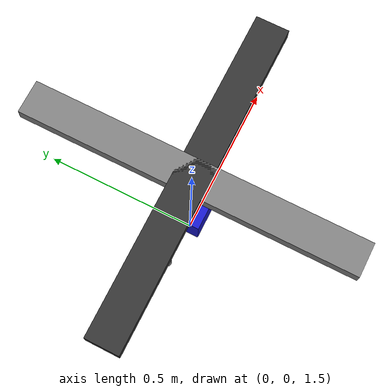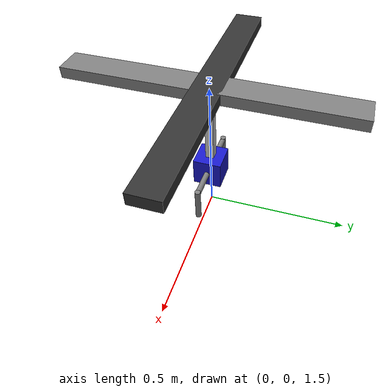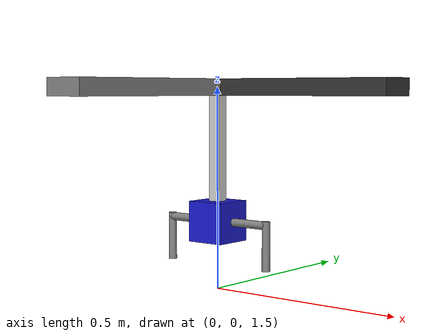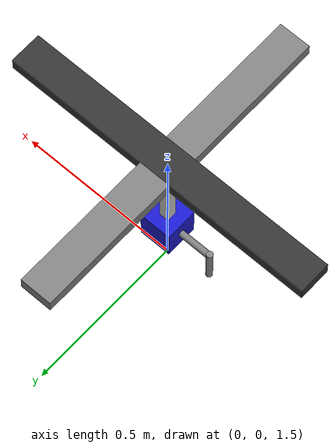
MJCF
<?xml version="1.0" encoding="utf-8"?>
<mujoco model="crane_game">
    <compiler angle="radian" autolimits="true"/>

    <default>
        <joint armature="1" damping="1" limited="true"/>
        <motor ctrllimited="true" ctrlrange="-1 1"/>
        <default class="track">
            <joint type="slide" damping="100" stiffness="0"/>
            <geom type="box" rgba="0.7 0.7 0.7 1" contype="1" conaffinity="1"/>
        </default>
        <default class="telescope">
            <joint type="slide" damping="100" stiffness="100"/>
            <geom type="box" rgba="0.7 0.7 0.7 1" contype="1" conaffinity="1"/>
        </default>
        <default class="claw">
            <joint type="hinge" damping="10" stiffness="0"/>
            <geom type="box" rgba="0.9 0.2 0.2 1" contype="1" conaffinity="1"/>
        </default>
    </default>

    <contact>
        <exclude body1="x_rail" body2="top_frame"/>
        <exclude body1="y_rail" body2="top_frame"/>
        <exclude body1="z_mechanism" body2="top_frame"/>
        <exclude body1="telescopic_segment" body2="top_frame"/>

        <exclude body1="x_rail" body2="y_rail"/>
        <exclude body1="y_rail" body2="z_mechanism"/>
        <exclude body1="x_rail" body2="z_mechanism"/>

        <exclude body1="y_rail" body2="telescopic_segment"/>
        <exclude body1="x_rail" body2="telescopic_segment"/>
        <exclude body1="z_mechanism" body2="telescopic_segment"/>

        <!-- Claw exclusions -->
        <exclude body1="claw_base" body2="telescopic_segment"/>
        <exclude body1="claw_left" body2="claw_right"/>
        <exclude body1="claw_base" body2="claw_left"/>
        <exclude body1="claw_base" body2="claw_right"/>
    </contact>

    <worldbody>
        <!-- Top frame -->
        <body name="top_frame" pos="0 0 2">
            <geom type="box" size="0.5 0.05 0.02" rgba="0.2 0.2 0.2 1" contype="1" conaffinity="1"/>

            <!-- X-axis rail -->
            <body name="x_rail" pos="0 0 0">
                <joint name="x_slider" class="track" axis="1 0 0" range="-0.4 0.4"/>
                <geom type="box" size="0.05 0.5 0.02"/>

                <!-- Y-axis rail -->
                <body name="y_rail" pos="0 0 -0.15">
                    <joint name="y_slider" class="track" axis="0 1 0" range="-0.4 0.4"/>
                    <geom type="box" size="0.015 0.015 0.15" rgba="0.8 0.8 0.8 1"/>

                    <!-- Second telescopic segment -->
                    <body name="z_mechanism" pos="0 0 -0.01">
                        <joint name="telescopic_segment_joint" class="telescope" axis="0 0 1" range="-.2 0"/>
                        <geom type="box" size="0.012 0.012 0.15" rgba="0.7 0.7 0.7 1"/>

                        <!-- Third (bottom) telescopic segment -->
                        <body name="telescopic_segment" pos="0 0 -0.02">
                            <joint name="z_slider" class="telescope" axis="0 0 1" range="-0.4 0"/>
                            <geom type="box" size="0.01 0.01 0.15" rgba="0.6 0.6 0.6 1"/>

                            <!-- Claw mechanism -->
                            <body name="claw_base" pos="0 0 -0.15">
                                <geom type="box" size="0.05 0.05 0.05" rgba="0.1 0.1 0.8 1"/>

                                <!-- Left claw -->
                                <body name="claw_left" pos="0.05 0 0">
                                    <joint name="claw_left_joint" class="claw" axis="0 1 0" range="0 1.5707"/>
                                    <geom type="cylinder" size="0.01 0.06" pos="0.04 0 0" euler="0 1.5707 0"/>
                                    <geom type="cylinder" size="0.01 0.06" pos="0.1 0 -0.05"/>
                                </body>

                                <!-- Right claw -->
                                <body name="claw_right" pos="-0.05 0 0">
                                    <joint name="claw_right_joint" class="claw" axis="0 1 0" range="-1.5707 0"/>
                                    <geom type="cylinder" size="0.01 0.06" pos="-0.04 0 0" euler="0 1.5707 0"/>
                                    <geom type="cylinder" size="0.01 0.06" pos="-0.1 0 -0.05"/>
                                </body>
                            </body>
                        </body>
                    </body>
                </body>
            </body>
        </body>
    </worldbody>

    <equality>
        <!-- Proportional extension constraints -->
        <joint joint1="z_slider" joint2="telescopic_segment_joint" polycoef="0 1.0 0 0 0"/>
        <!-- Synchronize claw movement -->
        <joint joint1="claw_left_joint" joint2="claw_right_joint" polycoef="0 -1 0 0 0"/>
    </equality>

    <actuator>
        <position name="x_servo" joint="x_slider" kp="100"/>
        <position name="y_servo" joint="y_slider" kp="100"/>
        <position name="z_servo" joint="z_slider" kp="100"/>
        <position name="claw_grip_servo" joint="claw_left_joint" kp="50"/>
    </actuator>
</mujoco>
